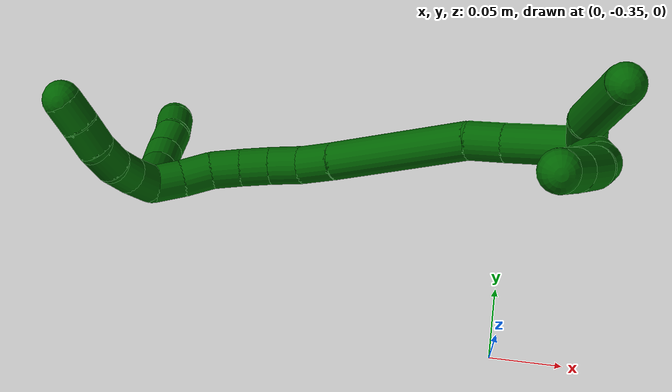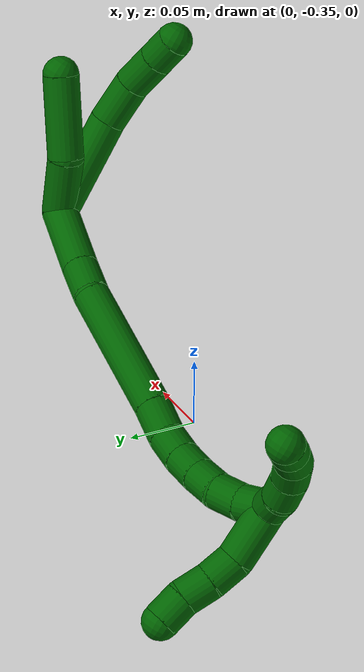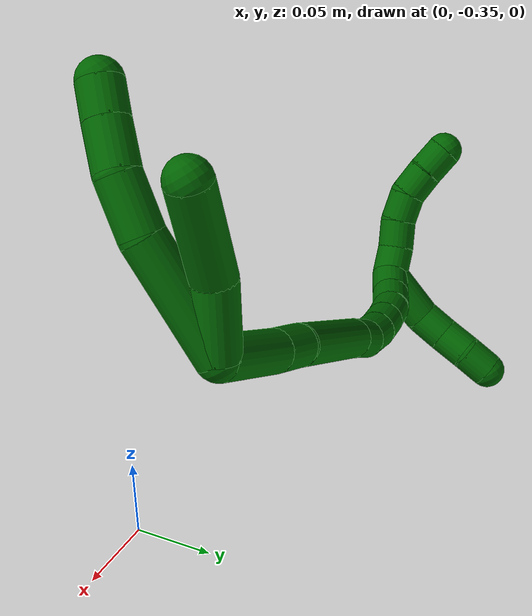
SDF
<sdf version="1.7">
 <world name="default">
  <model name="6">
   <static>0</static>
   <link name="6">
    <collision name="collision-cylinder-e_1_2_8">
     <pose>0.000121 0.000971 0.03557 -0.027297 0.003399 -4.6e-05</pose>
     <geometry><cylinder><radius>0.0125</radius><length>0.071166</length></cylinder></geometry>
     <surface>
      <friction><ode><mu>1.16</mu><mu2>1.16</mu2><slip1>0</slip1><slip2>0</slip2></ode></friction>
      <contact><ode><kp>1e+06</kp><kd>1</kd><max_vel>0</max_vel><min_depth>0.001</min_depth></ode></contact>
     </surface>
    </collision>
    <visual name="visual-cylinder-e_1_2_8">
     <pose>0.000121 0.000971 0.03557 -0.027297 0.003399 -4.6e-05</pose>
     <geometry><cylinder><radius>0.0125</radius><length>0.071166</length></cylinder></geometry>
     <material><ambient>0 0.392157 0.003922 1</ambient></material>
    </visual>
    <collision name="collision-cylinder-e_2_8_9">
     <pose>-0.003444 0.002132 0.086646 -0.012246 -0.233354 0.001435</pose>
     <geometry><cylinder><radius>0.0125</radius><length>0.031881</length></cylinder></geometry>
     <surface>
      <friction><ode><mu>1.16</mu><mu2>1.16</mu2><slip1>0</slip1><slip2>0</slip2></ode></friction>
      <contact><ode><kp>1e+06</kp><kd>1</kd><max_vel>0</max_vel><min_depth>0.001</min_depth></ode></contact>
     </surface>
    </collision>
    <visual name="visual-cylinder-e_2_8_9">
     <pose>-0.003444 0.002132 0.086646 -0.012246 -0.233354 0.001435</pose>
     <geometry><cylinder><radius>0.0125</radius><length>0.031881</length></cylinder></geometry>
     <material><ambient>0 0.392157 0.003922 1</ambient></material>
    </visual>
    <collision name="collision-cylinder-e_3_9_10">
     <pose>-0.013436 0.00153 0.11384 0.067668 -0.493853 -0.017063</pose>
     <geometry><cylinder><radius>0.0125</radius><length>0.026605</length></cylinder></geometry>
     <surface>
      <friction><ode><mu>1.16</mu><mu2>1.16</mu2><slip1>0</slip1><slip2>0</slip2></ode></friction>
      <contact><ode><kp>1e+06</kp><kd>1</kd><max_vel>0</max_vel><min_depth>0.001</min_depth></ode></contact>
     </surface>
    </collision>
    <visual name="visual-cylinder-e_3_9_10">
     <pose>-0.013436 0.00153 0.11384 0.067668 -0.493853 -0.017063</pose>
     <geometry><cylinder><radius>0.0125</radius><length>0.026605</length></cylinder></geometry>
     <material><ambient>0 0.392157 0.003922 1</ambient></material>
    </visual>
    <collision name="collision-cylinder-e_4_10_6">
     <pose>-0.024779 0.000356 0.134357 0.043284 -0.517978 -0.011469</pose>
     <geometry><cylinder><radius>0.0125</radius><length>0.020348</length></cylinder></geometry>
     <surface>
      <friction><ode><mu>1.16</mu><mu2>1.16</mu2><slip1>0</slip1><slip2>0</slip2></ode></friction>
      <contact><ode><kp>1e+06</kp><kd>1</kd><max_vel>0</max_vel><min_depth>0.001</min_depth></ode></contact>
     </surface>
    </collision>
    <visual name="visual-cylinder-e_4_10_6">
     <pose>-0.024779 0.000356 0.134357 0.043284 -0.517978 -0.011469</pose>
     <geometry><cylinder><radius>0.0125</radius><length>0.020348</length></cylinder></geometry>
     <material><ambient>0 0.392157 0.003922 1</ambient></material>
    </visual>
    <collision name="collision-cylinder-e_1_2_11">
     <pose>-0.004785 0.009526 0.018127 -0.48384 -0.229539 0.056874</pose>
     <geometry><cylinder><radius>0.0125</radius><length>0.042059</length></cylinder></geometry>
     <surface>
      <friction><ode><mu>1.16</mu><mu2>1.16</mu2><slip1>0</slip1><slip2>0</slip2></ode></friction>
      <contact><ode><kp>1e+06</kp><kd>1</kd><max_vel>0</max_vel><min_depth>0.001</min_depth></ode></contact>
     </surface>
    </collision>
    <visual name="visual-cylinder-e_1_2_11">
     <pose>-0.004785 0.009526 0.018127 -0.48384 -0.229539 0.056874</pose>
     <geometry><cylinder><radius>0.0125</radius><length>0.042059</length></cylinder></geometry>
     <material><ambient>0 0.392157 0.003922 1</ambient></material>
    </visual>
    <collision name="collision-cylinder-e_2_11_5">
     <pose>-0.006863 0.034333 0.060718 -0.558358 0.093551 -0.026836</pose>
     <geometry><cylinder><radius>0.0125</radius><length>0.057941</length></cylinder></geometry>
     <surface>
      <friction><ode><mu>1.16</mu><mu2>1.16</mu2><slip1>0</slip1><slip2>0</slip2></ode></friction>
      <contact><ode><kp>1e+06</kp><kd>1</kd><max_vel>0</max_vel><min_depth>0.001</min_depth></ode></contact>
     </surface>
    </collision>
    <visual name="visual-cylinder-e_2_11_5">
     <pose>-0.006863 0.034333 0.060718 -0.558358 0.093551 -0.026836</pose>
     <geometry><cylinder><radius>0.0125</radius><length>0.057941</length></cylinder></geometry>
     <material><ambient>0 0.392157 0.003922 1</ambient></material>
    </visual>
    <collision name="collision-cylinder-e_1_2_12">
     <pose>-0.022207 -0.00806 -0.010911 2.50534 -1.02244 -2.07991</pose>
     <geometry><cylinder><radius>0.0125</radius><length>0.052044</length></cylinder></geometry>
     <surface>
      <friction><ode><mu>1.16</mu><mu2>1.16</mu2><slip1>0</slip1><slip2>0</slip2></ode></friction>
      <contact><ode><kp>1e+06</kp><kd>1</kd><max_vel>0</max_vel><min_depth>0.001</min_depth></ode></contact>
     </surface>
    </collision>
    <visual name="visual-cylinder-e_1_2_12">
     <pose>-0.022207 -0.00806 -0.010911 2.50534 -1.02244 -2.07991</pose>
     <geometry><cylinder><radius>0.0125</radius><length>0.052044</length></cylinder></geometry>
     <material><ambient>0 0.392157 0.003922 1</ambient></material>
    </visual>
    <collision name="collision-cylinder-e_2_12_13">
     <pose>-0.055422 -0.019786 -0.026476 2.47447 -1.07703 -2.0904</pose>
     <geometry><cylinder><radius>0.0125</radius><length>0.025004</length></cylinder></geometry>
     <surface>
      <friction><ode><mu>1.16</mu><mu2>1.16</mu2><slip1>0</slip1><slip2>0</slip2></ode></friction>
      <contact><ode><kp>1e+06</kp><kd>1</kd><max_vel>0</max_vel><min_depth>0.001</min_depth></ode></contact>
     </surface>
    </collision>
    <visual name="visual-cylinder-e_2_12_13">
     <pose>-0.055422 -0.019786 -0.026476 2.47447 -1.07703 -2.0904</pose>
     <geometry><cylinder><radius>0.0125</radius><length>0.025004</length></cylinder></geometry>
     <material><ambient>0 0.392157 0.003922 1</ambient></material>
    </visual>
    <collision name="collision-cylinder-e_3_13_14">
     <pose>-0.104422 -0.046359 -0.048967 2.23238 -0.918288 -1.58226</pose>
     <geometry><cylinder><radius>0.0125</radius><length>0.095626</length></cylinder></geometry>
     <surface>
      <friction><ode><mu>1.16</mu><mu2>1.16</mu2><slip1>0</slip1><slip2>0</slip2></ode></friction>
      <contact><ode><kp>1e+06</kp><kd>1</kd><max_vel>0</max_vel><min_depth>0.001</min_depth></ode></contact>
     </surface>
    </collision>
    <visual name="visual-cylinder-e_3_13_14">
     <pose>-0.104422 -0.046359 -0.048967 2.23238 -0.918288 -1.58226</pose>
     <geometry><cylinder><radius>0.0125</radius><length>0.095626</length></cylinder></geometry>
     <material><ambient>0 0.392157 0.003922 1</ambient></material>
    </visual>
    <collision name="collision-cylinder-e_4_14_15">
     <pose>-0.151921 -0.074777 -0.072025 2.3292 -0.896983 -1.68279</pose>
     <geometry><cylinder><radius>0.0125</radius><length>0.024336</length></cylinder></geometry>
     <surface>
      <friction><ode><mu>1.16</mu><mu2>1.16</mu2><slip1>0</slip1><slip2>0</slip2></ode></friction>
      <contact><ode><kp>1e+06</kp><kd>1</kd><max_vel>0</max_vel><min_depth>0.001</min_depth></ode></contact>
     </surface>
    </collision>
    <visual name="visual-cylinder-e_4_14_15">
     <pose>-0.151921 -0.074777 -0.072025 2.3292 -0.896983 -1.68279</pose>
     <geometry><cylinder><radius>0.0125</radius><length>0.024336</length></cylinder></geometry>
     <material><ambient>0 0.392157 0.003922 1</ambient></material>
    </visual>
    <collision name="collision-cylinder-e_5_15_16">
     <pose>-0.171183 -0.084257 -0.07936 2.06014 -1.13886 -1.63485</pose>
     <geometry><cylinder><radius>0.0125</radius><length>0.021479</length></cylinder></geometry>
     <surface>
      <friction><ode><mu>1.16</mu><mu2>1.16</mu2><slip1>0</slip1><slip2>0</slip2></ode></friction>
      <contact><ode><kp>1e+06</kp><kd>1</kd><max_vel>0</max_vel><min_depth>0.001</min_depth></ode></contact>
     </surface>
    </collision>
    <visual name="visual-cylinder-e_5_15_16">
     <pose>-0.171183 -0.084257 -0.07936 2.06014 -1.13886 -1.63485</pose>
     <geometry><cylinder><radius>0.0125</radius><length>0.021479</length></cylinder></geometry>
     <material><ambient>0 0.392157 0.003922 1</ambient></material>
    </visual>
    <collision name="collision-cylinder-e_6_16_17">
     <pose>-0.190136 -0.092128 -0.082273 1.77291 -1.16212 -1.35543</pose>
     <geometry><cylinder><radius>0.0125</radius><length>0.020051</length></cylinder></geometry>
     <surface>
      <friction><ode><mu>1.16</mu><mu2>1.16</mu2><slip1>0</slip1><slip2>0</slip2></ode></friction>
      <contact><ode><kp>1e+06</kp><kd>1</kd><max_vel>0</max_vel><min_depth>0.001</min_depth></ode></contact>
     </surface>
    </collision>
    <visual name="visual-cylinder-e_6_16_17">
     <pose>-0.190136 -0.092128 -0.082273 1.77291 -1.16212 -1.35543</pose>
     <geometry><cylinder><radius>0.0125</radius><length>0.020051</length></cylinder></geometry>
     <material><ambient>0 0.392157 0.003922 1</ambient></material>
    </visual>
    <collision name="collision-cylinder-e_7_17_18">
     <pose>-0.2085 -0.10006 -0.08314 1.58731 -1.15657 -1.17174</pose>
     <geometry><cylinder><radius>0.0125</radius><length>0.02002</length></cylinder></geometry>
     <surface>
      <friction><ode><mu>1.16</mu><mu2>1.16</mu2><slip1>0</slip1><slip2>0</slip2></ode></friction>
      <contact><ode><kp>1e+06</kp><kd>1</kd><max_vel>0</max_vel><min_depth>0.001</min_depth></ode></contact>
     </surface>
    </collision>
    <visual name="visual-cylinder-e_7_17_18">
     <pose>-0.2085 -0.10006 -0.08314 1.58731 -1.15657 -1.17174</pose>
     <geometry><cylinder><radius>0.0125</radius><length>0.02002</length></cylinder></geometry>
     <material><ambient>0 0.392157 0.003922 1</ambient></material>
    </visual>
    <collision name="collision-cylinder-e_8_18_19">
     <pose>-0.226245 -0.109595 -0.081398 1.25349 -0.976797 -0.734598</pose>
     <geometry><cylinder><radius>0.0125</radius><length>0.020712</length></cylinder></geometry>
     <surface>
      <friction><ode><mu>1.16</mu><mu2>1.16</mu2><slip1>0</slip1><slip2>0</slip2></ode></friction>
      <contact><ode><kp>1e+06</kp><kd>1</kd><max_vel>0</max_vel><min_depth>0.001</min_depth></ode></contact>
     </surface>
    </collision>
    <visual name="visual-cylinder-e_8_18_19">
     <pose>-0.226245 -0.109595 -0.081398 1.25349 -0.976797 -0.734598</pose>
     <geometry><cylinder><radius>0.0125</radius><length>0.020712</length></cylinder></geometry>
     <material><ambient>0 0.392157 0.003922 1</ambient></material>
    </visual>
    <collision name="collision-cylinder-e_9_19_1">
     <pose>-0.243487 -0.119465 -0.075933 0.873298 -0.989191 -0.493138</pose>
     <geometry><cylinder><radius>0.0125</radius><length>0.020727</length></cylinder></geometry>
     <surface>
      <friction><ode><mu>1.16</mu><mu2>1.16</mu2><slip1>0</slip1><slip2>0</slip2></ode></friction>
      <contact><ode><kp>1e+06</kp><kd>1</kd><max_vel>0</max_vel><min_depth>0.001</min_depth></ode></contact>
     </surface>
    </collision>
    <visual name="visual-cylinder-e_9_19_1">
     <pose>-0.243487 -0.119465 -0.075933 0.873298 -0.989191 -0.493138</pose>
     <geometry><cylinder><radius>0.0125</radius><length>0.020727</length></cylinder></geometry>
     <material><ambient>0 0.392157 0.003922 1</ambient></material>
    </visual>
    <collision name="collision-cylinder-e_1_1_20">
     <pose>-0.253625 -0.121987 -0.091423 -3.04573 -0.076757 1.35009</pose>
     <geometry><cylinder><radius>0.0125</radius><length>0.038584</length></cylinder></geometry>
     <surface>
      <friction><ode><mu>1.16</mu><mu2>1.16</mu2><slip1>0</slip1><slip2>0</slip2></ode></friction>
      <contact><ode><kp>1e+06</kp><kd>1</kd><max_vel>0</max_vel><min_depth>0.001</min_depth></ode></contact>
     </surface>
    </collision>
    <visual name="visual-cylinder-e_1_1_20">
     <pose>-0.253625 -0.121987 -0.091423 -3.04573 -0.076757 1.35009</pose>
     <geometry><cylinder><radius>0.0125</radius><length>0.038584</length></cylinder></geometry>
     <material><ambient>0 0.392157 0.003922 1</ambient></material>
    </visual>
    <collision name="collision-cylinder-e_2_20_21">
     <pose>-0.255695 -0.115922 -0.120014 -2.72102 -0.056994 0.265521</pose>
     <geometry><cylinder><radius>0.0125</radius><length>0.020726</length></cylinder></geometry>
     <surface>
      <friction><ode><mu>1.16</mu><mu2>1.16</mu2><slip1>0</slip1><slip2>0</slip2></ode></friction>
      <contact><ode><kp>1e+06</kp><kd>1</kd><max_vel>0</max_vel><min_depth>0.001</min_depth></ode></contact>
     </surface>
    </collision>
    <visual name="visual-cylinder-e_2_20_21">
     <pose>-0.255695 -0.115922 -0.120014 -2.72102 -0.056994 0.265521</pose>
     <geometry><cylinder><radius>0.0125</radius><length>0.020726</length></cylinder></geometry>
     <material><ambient>0 0.392157 0.003922 1</ambient></material>
    </visual>
    <collision name="collision-cylinder-e_3_21_22">
     <pose>-0.256229 -0.106471 -0.138211 -2.60326 0.005548 -0.020113</pose>
     <geometry><cylinder><radius>0.0125</radius><length>0.020388</length></cylinder></geometry>
     <surface>
      <friction><ode><mu>1.16</mu><mu2>1.16</mu2><slip1>0</slip1><slip2>0</slip2></ode></friction>
      <contact><ode><kp>1e+06</kp><kd>1</kd><max_vel>0</max_vel><min_depth>0.001</min_depth></ode></contact>
     </surface>
    </collision>
    <visual name="visual-cylinder-e_3_21_22">
     <pose>-0.256229 -0.106471 -0.138211 -2.60326 0.005548 -0.020113</pose>
     <geometry><cylinder><radius>0.0125</radius><length>0.020388</length></cylinder></geometry>
     <material><ambient>0 0.392157 0.003922 1</ambient></material>
    </visual>
    <collision name="collision-cylinder-e_4_22_4">
     <pose>-0.257605 -0.097837 -0.156417 -2.79566 -0.141609 0.771243</pose>
     <geometry><cylinder><radius>0.0125</radius><length>0.020302</length></cylinder></geometry>
     <surface>
      <friction><ode><mu>1.16</mu><mu2>1.16</mu2><slip1>0</slip1><slip2>0</slip2></ode></friction>
      <contact><ode><kp>1e+06</kp><kd>1</kd><max_vel>0</max_vel><min_depth>0.001</min_depth></ode></contact>
     </surface>
    </collision>
    <visual name="visual-cylinder-e_4_22_4">
     <pose>-0.257605 -0.097837 -0.156417 -2.79566 -0.141609 0.771243</pose>
     <geometry><cylinder><radius>0.0125</radius><length>0.020302</length></cylinder></geometry>
     <material><ambient>0 0.392157 0.003922 1</ambient></material>
    </visual>
    <collision name="collision-cylinder-e_1_1_23">
     <pose>-0.259357 -0.121676 -0.06569 -0.315828 -0.805353 0.13545</pose>
     <geometry><cylinder><radius>0.0125</radius><length>0.02</length></cylinder></geometry>
     <surface>
      <friction><ode><mu>1.16</mu><mu2>1.16</mu2><slip1>0</slip1><slip2>0</slip2></ode></friction>
      <contact><ode><kp>1e+06</kp><kd>1</kd><max_vel>0</max_vel><min_depth>0.001</min_depth></ode></contact>
     </surface>
    </collision>
    <visual name="visual-cylinder-e_1_1_23">
     <pose>-0.259357 -0.121676 -0.06569 -0.315828 -0.805353 0.13545</pose>
     <geometry><cylinder><radius>0.0125</radius><length>0.02</length></cylinder></geometry>
     <material><ambient>0 0.392157 0.003922 1</ambient></material>
    </visual>
    <collision name="collision-cylinder-e_2_23_24">
     <pose>-0.271723 -0.116437 -0.051111 -0.368628 -0.541683 0.103438</pose>
     <geometry><cylinder><radius>0.0125</radius><length>0.02</length></cylinder></geometry>
     <surface>
      <friction><ode><mu>1.16</mu><mu2>1.16</mu2><slip1>0</slip1><slip2>0</slip2></ode></friction>
      <contact><ode><kp>1e+06</kp><kd>1</kd><max_vel>0</max_vel><min_depth>0.001</min_depth></ode></contact>
     </surface>
    </collision>
    <visual name="visual-cylinder-e_2_23_24">
     <pose>-0.271723 -0.116437 -0.051111 -0.368628 -0.541683 0.103438</pose>
     <geometry><cylinder><radius>0.0125</radius><length>0.02</length></cylinder></geometry>
     <material><ambient>0 0.392157 0.003922 1</ambient></material>
    </visual>
    <collision name="collision-cylinder-e_3_24_25">
     <pose>-0.282765 -0.108457 -0.036683 -0.650015 -0.629337 0.218474</pose>
     <geometry><cylinder><radius>0.0125</radius><length>0.02</length></cylinder></geometry>
     <surface>
      <friction><ode><mu>1.16</mu><mu2>1.16</mu2><slip1>0</slip1><slip2>0</slip2></ode></friction>
      <contact><ode><kp>1e+06</kp><kd>1</kd><max_vel>0</max_vel><min_depth>0.001</min_depth></ode></contact>
     </surface>
    </collision>
    <visual name="visual-cylinder-e_3_24_25">
     <pose>-0.282765 -0.108457 -0.036683 -0.650015 -0.629337 0.218474</pose>
     <geometry><cylinder><radius>0.0125</radius><length>0.02</length></cylinder></geometry>
     <material><ambient>0 0.392157 0.003922 1</ambient></material>
    </visual>
    <collision name="collision-cylinder-e_4_25_26">
     <pose>-0.29538 -0.097133 -0.026592 -1.05397 -0.73805 0.442694</pose>
     <geometry><cylinder><radius>0.0125</radius><length>0.02</length></cylinder></geometry>
     <surface>
      <friction><ode><mu>1.16</mu><mu2>1.16</mu2><slip1>0</slip1><slip2>0</slip2></ode></friction>
      <contact><ode><kp>1e+06</kp><kd>1</kd><max_vel>0</max_vel><min_depth>0.001</min_depth></ode></contact>
     </surface>
    </collision>
    <visual name="visual-cylinder-e_4_25_26">
     <pose>-0.29538 -0.097133 -0.026592 -1.05397 -0.73805 0.442694</pose>
     <geometry><cylinder><radius>0.0125</radius><length>0.02</length></cylinder></geometry>
     <material><ambient>0 0.392157 0.003922 1</ambient></material>
    </visual>
    <collision name="collision-cylinder-e_5_26_3">
     <pose>-0.309301 -0.084426 -0.019956 -1.12732 -0.802833 0.524227</pose>
     <geometry><cylinder><radius>0.0125</radius><length>0.02</length></cylinder></geometry>
     <surface>
      <friction><ode><mu>1.16</mu><mu2>1.16</mu2><slip1>0</slip1><slip2>0</slip2></ode></friction>
      <contact><ode><kp>1e+06</kp><kd>1</kd><max_vel>0</max_vel><min_depth>0.001</min_depth></ode></contact>
     </surface>
    </collision>
    <visual name="visual-cylinder-e_5_26_3">
     <pose>-0.309301 -0.084426 -0.019956 -1.12732 -0.802833 0.524227</pose>
     <geometry><cylinder><radius>0.0125</radius><length>0.02</length></cylinder></geometry>
     <material><ambient>0 0.392157 0.003922 1</ambient></material>
    </visual>
    <collision name="collision-sphere-3">
     <pose>-0.316495 -0.078152 -0.016975 0 -0 0</pose>
     <geometry><sphere><radius>0.0125</radius></sphere></geometry>
     <surface>
      <friction><ode><mu>1.16</mu><mu2>1.16</mu2><slip1>0</slip1><slip2>0</slip2></ode></friction>
      <contact><ode><kp>1e+06</kp><kd>1</kd><max_vel>0</max_vel><min_depth>0.001</min_depth></ode></contact>
     </surface>
    </collision>
    <visual name="visual-sphere-3">
     <pose>-0.316495 -0.078152 -0.016975 0 -0 0</pose>
     <geometry><sphere><radius>0.0125</radius></sphere></geometry>
     <material><ambient>0 0.392157 0.003922 1</ambient></material>
    </visual>
    <collision name="collision-sphere-26">
     <pose>-0.302108 -0.090701 -0.022936 0 -0 0</pose>
     <geometry><sphere><radius>0.0125</radius></sphere></geometry>
     <surface>
      <friction><ode><mu>1.16</mu><mu2>1.16</mu2><slip1>0</slip1><slip2>0</slip2></ode></friction>
      <contact><ode><kp>1e+06</kp><kd>1</kd><max_vel>0</max_vel><min_depth>0.001</min_depth></ode></contact>
     </surface>
    </collision>
    <visual name="visual-sphere-26">
     <pose>-0.302108 -0.090701 -0.022936 0 -0 0</pose>
     <geometry><sphere><radius>0.0125</radius></sphere></geometry>
     <material><ambient>0 0.392157 0.003922 1</ambient></material>
    </visual>
    <collision name="collision-sphere-25">
     <pose>-0.288651 -0.103564 -0.030247 0 -0 0</pose>
     <geometry><sphere><radius>0.0125</radius></sphere></geometry>
     <surface>
      <friction><ode><mu>1.16</mu><mu2>1.16</mu2><slip1>0</slip1><slip2>0</slip2></ode></friction>
      <contact><ode><kp>1e+06</kp><kd>1</kd><max_vel>0</max_vel><min_depth>0.001</min_depth></ode></contact>
     </surface>
    </collision>
    <visual name="visual-sphere-25">
     <pose>-0.288651 -0.103564 -0.030247 0 -0 0</pose>
     <geometry><sphere><radius>0.0125</radius></sphere></geometry>
     <material><ambient>0 0.392157 0.003922 1</ambient></material>
    </visual>
    <collision name="collision-sphere-24">
     <pose>-0.276879 -0.113349 -0.043118 0 -0 0</pose>
     <geometry><sphere><radius>0.0125</radius></sphere></geometry>
     <surface>
      <friction><ode><mu>1.16</mu><mu2>1.16</mu2><slip1>0</slip1><slip2>0</slip2></ode></friction>
      <contact><ode><kp>1e+06</kp><kd>1</kd><max_vel>0</max_vel><min_depth>0.001</min_depth></ode></contact>
     </surface>
    </collision>
    <visual name="visual-sphere-24">
     <pose>-0.276879 -0.113349 -0.043118 0 -0 0</pose>
     <geometry><sphere><radius>0.0125</radius></sphere></geometry>
     <material><ambient>0 0.392157 0.003922 1</ambient></material>
    </visual>
    <collision name="collision-sphere-23">
     <pose>-0.266568 -0.119524 -0.059104 0 -0 0</pose>
     <geometry><sphere><radius>0.0125</radius></sphere></geometry>
     <surface>
      <friction><ode><mu>1.16</mu><mu2>1.16</mu2><slip1>0</slip1><slip2>0</slip2></ode></friction>
      <contact><ode><kp>1e+06</kp><kd>1</kd><max_vel>0</max_vel><min_depth>0.001</min_depth></ode></contact>
     </surface>
    </collision>
    <visual name="visual-sphere-23">
     <pose>-0.266568 -0.119524 -0.059104 0 -0 0</pose>
     <geometry><sphere><radius>0.0125</radius></sphere></geometry>
     <material><ambient>0 0.392157 0.003922 1</ambient></material>
    </visual>
    <collision name="collision-sphere-4">
     <pose>-0.259037 -0.09443 -0.165871 0 -0 0</pose>
     <geometry><sphere><radius>0.0125</radius></sphere></geometry>
     <surface>
      <friction><ode><mu>1.16</mu><mu2>1.16</mu2><slip1>0</slip1><slip2>0</slip2></ode></friction>
      <contact><ode><kp>1e+06</kp><kd>1</kd><max_vel>0</max_vel><min_depth>0.001</min_depth></ode></contact>
     </surface>
    </collision>
    <visual name="visual-sphere-4">
     <pose>-0.259037 -0.09443 -0.165871 0 -0 0</pose>
     <geometry><sphere><radius>0.0125</radius></sphere></geometry>
     <material><ambient>0 0.392157 0.003922 1</ambient></material>
    </visual>
    <collision name="collision-sphere-22">
     <pose>-0.256172 -0.101245 -0.146963 0 -0 0</pose>
     <geometry><sphere><radius>0.0125</radius></sphere></geometry>
     <surface>
      <friction><ode><mu>1.16</mu><mu2>1.16</mu2><slip1>0</slip1><slip2>0</slip2></ode></friction>
      <contact><ode><kp>1e+06</kp><kd>1</kd><max_vel>0</max_vel><min_depth>0.001</min_depth></ode></contact>
     </surface>
    </collision>
    <visual name="visual-sphere-22">
     <pose>-0.256172 -0.101245 -0.146963 0 -0 0</pose>
     <geometry><sphere><radius>0.0125</radius></sphere></geometry>
     <material><ambient>0 0.392157 0.003922 1</ambient></material>
    </visual>
    <collision name="collision-sphere-21">
     <pose>-0.256285 -0.111698 -0.129458 0 -0 0</pose>
     <geometry><sphere><radius>0.0125</radius></sphere></geometry>
     <surface>
      <friction><ode><mu>1.16</mu><mu2>1.16</mu2><slip1>0</slip1><slip2>0</slip2></ode></friction>
      <contact><ode><kp>1e+06</kp><kd>1</kd><max_vel>0</max_vel><min_depth>0.001</min_depth></ode></contact>
     </surface>
    </collision>
    <visual name="visual-sphere-21">
     <pose>-0.256285 -0.111698 -0.129458 0 -0 0</pose>
     <geometry><sphere><radius>0.0125</radius></sphere></geometry>
     <material><ambient>0 0.392157 0.003922 1</ambient></material>
    </visual>
    <collision name="collision-sphere-20">
     <pose>-0.255105 -0.120146 -0.110569 0 -0 0</pose>
     <geometry><sphere><radius>0.0125</radius></sphere></geometry>
     <surface>
      <friction><ode><mu>1.16</mu><mu2>1.16</mu2><slip1>0</slip1><slip2>0</slip2></ode></friction>
      <contact><ode><kp>1e+06</kp><kd>1</kd><max_vel>0</max_vel><min_depth>0.001</min_depth></ode></contact>
     </surface>
    </collision>
    <visual name="visual-sphere-20">
     <pose>-0.255105 -0.120146 -0.110569 0 -0 0</pose>
     <geometry><sphere><radius>0.0125</radius></sphere></geometry>
     <material><ambient>0 0.392157 0.003922 1</ambient></material>
    </visual>
    <collision name="collision-sphere-11">
     <pose>-0.00957 0.019052 0.036254 0 -0 0</pose>
     <geometry><sphere><radius>0.0125</radius></sphere></geometry>
     <surface>
      <friction><ode><mu>1.16</mu><mu2>1.16</mu2><slip1>0</slip1><slip2>0</slip2></ode></friction>
      <contact><ode><kp>1e+06</kp><kd>1</kd><max_vel>0</max_vel><min_depth>0.001</min_depth></ode></contact>
     </surface>
    </collision>
    <visual name="visual-sphere-11">
     <pose>-0.00957 0.019052 0.036254 0 -0 0</pose>
     <geometry><sphere><radius>0.0125</radius></sphere></geometry>
     <material><ambient>0 0.392157 0.003922 1</ambient></material>
    </visual>
    <collision name="collision-sphere-6">
     <pose>-0.029816 -2.7e-05 0.143188 0 -0 0</pose>
     <geometry><sphere><radius>0.0125</radius></sphere></geometry>
     <surface>
      <friction><ode><mu>1.16</mu><mu2>1.16</mu2><slip1>0</slip1><slip2>0</slip2></ode></friction>
      <contact><ode><kp>1e+06</kp><kd>1</kd><max_vel>0</max_vel><min_depth>0.001</min_depth></ode></contact>
     </surface>
    </collision>
    <visual name="visual-sphere-6">
     <pose>-0.029816 -2.7e-05 0.143188 0 -0 0</pose>
     <geometry><sphere><radius>0.0125</radius></sphere></geometry>
     <material><ambient>0 0.392157 0.003922 1</ambient></material>
    </visual>
    <collision name="collision-sphere-10">
     <pose>-0.019742 0.000738 0.125526 0 -0 0</pose>
     <geometry><sphere><radius>0.0125</radius></sphere></geometry>
     <surface>
      <friction><ode><mu>1.16</mu><mu2>1.16</mu2><slip1>0</slip1><slip2>0</slip2></ode></friction>
      <contact><ode><kp>1e+06</kp><kd>1</kd><max_vel>0</max_vel><min_depth>0.001</min_depth></ode></contact>
     </surface>
    </collision>
    <visual name="visual-sphere-10">
     <pose>-0.019742 0.000738 0.125526 0 -0 0</pose>
     <geometry><sphere><radius>0.0125</radius></sphere></geometry>
     <material><ambient>0 0.392157 0.003922 1</ambient></material>
    </visual>
    <collision name="collision-sphere-9">
     <pose>-0.00713 0.002322 0.102153 0 -0 0</pose>
     <geometry><sphere><radius>0.0125</radius></sphere></geometry>
     <surface>
      <friction><ode><mu>1.16</mu><mu2>1.16</mu2><slip1>0</slip1><slip2>0</slip2></ode></friction>
      <contact><ode><kp>1e+06</kp><kd>1</kd><max_vel>0</max_vel><min_depth>0.001</min_depth></ode></contact>
     </surface>
    </collision>
    <visual name="visual-sphere-9">
     <pose>-0.00713 0.002322 0.102153 0 -0 0</pose>
     <geometry><sphere><radius>0.0125</radius></sphere></geometry>
     <material><ambient>0 0.392157 0.003922 1</ambient></material>
    </visual>
    <collision name="collision-sphere-2">
     <geometry><sphere><radius>0.0125</radius></sphere></geometry>
     <surface>
      <friction><ode><mu>1.16</mu><mu2>1.16</mu2><slip1>0</slip1><slip2>0</slip2></ode></friction>
      <contact><ode><kp>1e+06</kp><kd>1</kd><max_vel>0</max_vel><min_depth>0.001</min_depth></ode></contact>
     </surface>
    </collision>
    <visual name="visual-sphere-2">
     <geometry><sphere><radius>0.0125</radius></sphere></geometry>
     <material><ambient>0 0.392157 0.003922 1</ambient></material>
    </visual>
    <collision name="collision-sphere-19">
     <pose>-0.234827 -0.115101 -0.079589 0 -0 0</pose>
     <geometry><sphere><radius>0.0125</radius></sphere></geometry>
     <surface>
      <friction><ode><mu>1.16</mu><mu2>1.16</mu2><slip1>0</slip1><slip2>0</slip2></ode></friction>
      <contact><ode><kp>1e+06</kp><kd>1</kd><max_vel>0</max_vel><min_depth>0.001</min_depth></ode></contact>
     </surface>
    </collision>
    <visual name="visual-sphere-19">
     <pose>-0.234827 -0.115101 -0.079589 0 -0 0</pose>
     <geometry><sphere><radius>0.0125</radius></sphere></geometry>
     <material><ambient>0 0.392157 0.003922 1</ambient></material>
    </visual>
    <collision name="collision-sphere-8">
     <pose>0.000242 0.001942 0.071139 0 -0 0</pose>
     <geometry><sphere><radius>0.0125</radius></sphere></geometry>
     <surface>
      <friction><ode><mu>1.16</mu><mu2>1.16</mu2><slip1>0</slip1><slip2>0</slip2></ode></friction>
      <contact><ode><kp>1e+06</kp><kd>1</kd><max_vel>0</max_vel><min_depth>0.001</min_depth></ode></contact>
     </surface>
    </collision>
    <visual name="visual-sphere-8">
     <pose>0.000242 0.001942 0.071139 0 -0 0</pose>
     <geometry><sphere><radius>0.0125</radius></sphere></geometry>
     <material><ambient>0 0.392157 0.003922 1</ambient></material>
    </visual>
    <collision name="collision-sphere-5">
     <pose>-0.004157 0.049615 0.085181 0 -0 0</pose>
     <geometry><sphere><radius>0.0125</radius></sphere></geometry>
     <surface>
      <friction><ode><mu>1.16</mu><mu2>1.16</mu2><slip1>0</slip1><slip2>0</slip2></ode></friction>
      <contact><ode><kp>1e+06</kp><kd>1</kd><max_vel>0</max_vel><min_depth>0.001</min_depth></ode></contact>
     </surface>
    </collision>
    <visual name="visual-sphere-5">
     <pose>-0.004157 0.049615 0.085181 0 -0 0</pose>
     <geometry><sphere><radius>0.0125</radius></sphere></geometry>
     <material><ambient>0 0.392157 0.003922 1</ambient></material>
    </visual>
    <collision name="collision-sphere-12">
     <pose>-0.044414 -0.01612 -0.021821 0 -0 0</pose>
     <geometry><sphere><radius>0.0125</radius></sphere></geometry>
     <surface>
      <friction><ode><mu>1.16</mu><mu2>1.16</mu2><slip1>0</slip1><slip2>0</slip2></ode></friction>
      <contact><ode><kp>1e+06</kp><kd>1</kd><max_vel>0</max_vel><min_depth>0.001</min_depth></ode></contact>
     </surface>
    </collision>
    <visual name="visual-sphere-12">
     <pose>-0.044414 -0.01612 -0.021821 0 -0 0</pose>
     <geometry><sphere><radius>0.0125</radius></sphere></geometry>
     <material><ambient>0 0.392157 0.003922 1</ambient></material>
    </visual>
    <collision name="collision-sphere-13">
     <pose>-0.066431 -0.023453 -0.031131 0 -0 0</pose>
     <geometry><sphere><radius>0.0125</radius></sphere></geometry>
     <surface>
      <friction><ode><mu>1.16</mu><mu2>1.16</mu2><slip1>0</slip1><slip2>0</slip2></ode></friction>
      <contact><ode><kp>1e+06</kp><kd>1</kd><max_vel>0</max_vel><min_depth>0.001</min_depth></ode></contact>
     </surface>
    </collision>
    <visual name="visual-sphere-13">
     <pose>-0.066431 -0.023453 -0.031131 0 -0 0</pose>
     <geometry><sphere><radius>0.0125</radius></sphere></geometry>
     <material><ambient>0 0.392157 0.003922 1</ambient></material>
    </visual>
    <collision name="collision-sphere-14">
     <pose>-0.142413 -0.069265 -0.066803 0 -0 0</pose>
     <geometry><sphere><radius>0.0125</radius></sphere></geometry>
     <surface>
      <friction><ode><mu>1.16</mu><mu2>1.16</mu2><slip1>0</slip1><slip2>0</slip2></ode></friction>
      <contact><ode><kp>1e+06</kp><kd>1</kd><max_vel>0</max_vel><min_depth>0.001</min_depth></ode></contact>
     </surface>
    </collision>
    <visual name="visual-sphere-14">
     <pose>-0.142413 -0.069265 -0.066803 0 -0 0</pose>
     <geometry><sphere><radius>0.0125</radius></sphere></geometry>
     <material><ambient>0 0.392157 0.003922 1</ambient></material>
    </visual>
    <collision name="collision-sphere-15">
     <pose>-0.16143 -0.080289 -0.077247 0 -0 0</pose>
     <geometry><sphere><radius>0.0125</radius></sphere></geometry>
     <surface>
      <friction><ode><mu>1.16</mu><mu2>1.16</mu2><slip1>0</slip1><slip2>0</slip2></ode></friction>
      <contact><ode><kp>1e+06</kp><kd>1</kd><max_vel>0</max_vel><min_depth>0.001</min_depth></ode></contact>
     </surface>
    </collision>
    <visual name="visual-sphere-15">
     <pose>-0.16143 -0.080289 -0.077247 0 -0 0</pose>
     <geometry><sphere><radius>0.0125</radius></sphere></geometry>
     <material><ambient>0 0.392157 0.003922 1</ambient></material>
    </visual>
    <collision name="collision-sphere-16">
     <pose>-0.180936 -0.088225 -0.081474 0 -0 0</pose>
     <geometry><sphere><radius>0.0125</radius></sphere></geometry>
     <surface>
      <friction><ode><mu>1.16</mu><mu2>1.16</mu2><slip1>0</slip1><slip2>0</slip2></ode></friction>
      <contact><ode><kp>1e+06</kp><kd>1</kd><max_vel>0</max_vel><min_depth>0.001</min_depth></ode></contact>
     </surface>
    </collision>
    <visual name="visual-sphere-16">
     <pose>-0.180936 -0.088225 -0.081474 0 -0 0</pose>
     <geometry><sphere><radius>0.0125</radius></sphere></geometry>
     <material><ambient>0 0.392157 0.003922 1</ambient></material>
    </visual>
    <collision name="collision-sphere-17">
     <pose>-0.199336 -0.096031 -0.083073 0 -0 0</pose>
     <geometry><sphere><radius>0.0125</radius></sphere></geometry>
     <surface>
      <friction><ode><mu>1.16</mu><mu2>1.16</mu2><slip1>0</slip1><slip2>0</slip2></ode></friction>
      <contact><ode><kp>1e+06</kp><kd>1</kd><max_vel>0</max_vel><min_depth>0.001</min_depth></ode></contact>
     </surface>
    </collision>
    <visual name="visual-sphere-17">
     <pose>-0.199336 -0.096031 -0.083073 0 -0 0</pose>
     <geometry><sphere><radius>0.0125</radius></sphere></geometry>
     <material><ambient>0 0.392157 0.003922 1</ambient></material>
    </visual>
    <collision name="collision-sphere-18">
     <pose>-0.217663 -0.104088 -0.083206 0 -0 0</pose>
     <geometry><sphere><radius>0.0125</radius></sphere></geometry>
     <surface>
      <friction><ode><mu>1.16</mu><mu2>1.16</mu2><slip1>0</slip1><slip2>0</slip2></ode></friction>
      <contact><ode><kp>1e+06</kp><kd>1</kd><max_vel>0</max_vel><min_depth>0.001</min_depth></ode></contact>
     </surface>
    </collision>
    <visual name="visual-sphere-18">
     <pose>-0.217663 -0.104088 -0.083206 0 -0 0</pose>
     <geometry><sphere><radius>0.0125</radius></sphere></geometry>
     <material><ambient>0 0.392157 0.003922 1</ambient></material>
    </visual>
    <collision name="collision-sphere-1">
     <pose>-0.252146 -0.123828 -0.072276 0 -0 0</pose>
     <geometry><sphere><radius>0.0125</radius></sphere></geometry>
     <surface>
      <friction><ode><mu>1.16</mu><mu2>1.16</mu2><slip1>0</slip1><slip2>0</slip2></ode></friction>
      <contact><ode><kp>1e+06</kp><kd>1</kd><max_vel>0</max_vel><min_depth>0.001</min_depth></ode></contact>
     </surface>
    </collision>
    <visual name="visual-sphere-1">
     <pose>-0.252146 -0.123828 -0.072276 0 -0 0</pose>
     <geometry><sphere><radius>0.0125</radius></sphere></geometry>
     <material><ambient>0 0.392157 0.003922 1</ambient></material>
    </visual>
    <inertial>
     <pose>-0.124123 -0.049103 -0.022154 0 -0 0</pose>
     <mass>0.75</mass>
     <inertia><ixx>-3e-06</ixx><ixy>0</ixy><ixz>0</ixz><iyy>8.5e-05</iyy><iyz>0</iyz><izz>0.000127</izz></inertia>
    </inertial>
   </link>
   <pose>0.035851 -0.264022 0.17174 0.575527 0.131082 -0.167503</pose>
  </model>
 </world>
</sdf>
